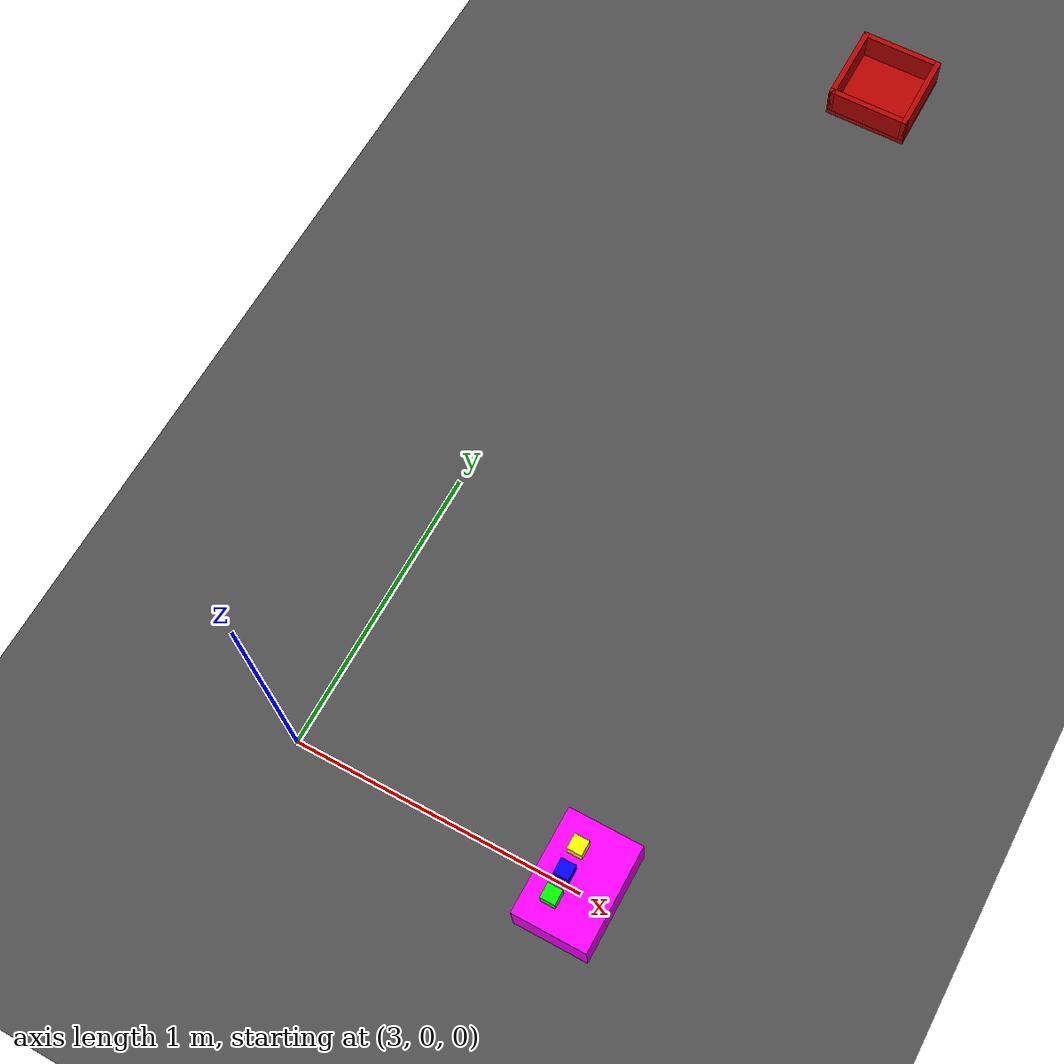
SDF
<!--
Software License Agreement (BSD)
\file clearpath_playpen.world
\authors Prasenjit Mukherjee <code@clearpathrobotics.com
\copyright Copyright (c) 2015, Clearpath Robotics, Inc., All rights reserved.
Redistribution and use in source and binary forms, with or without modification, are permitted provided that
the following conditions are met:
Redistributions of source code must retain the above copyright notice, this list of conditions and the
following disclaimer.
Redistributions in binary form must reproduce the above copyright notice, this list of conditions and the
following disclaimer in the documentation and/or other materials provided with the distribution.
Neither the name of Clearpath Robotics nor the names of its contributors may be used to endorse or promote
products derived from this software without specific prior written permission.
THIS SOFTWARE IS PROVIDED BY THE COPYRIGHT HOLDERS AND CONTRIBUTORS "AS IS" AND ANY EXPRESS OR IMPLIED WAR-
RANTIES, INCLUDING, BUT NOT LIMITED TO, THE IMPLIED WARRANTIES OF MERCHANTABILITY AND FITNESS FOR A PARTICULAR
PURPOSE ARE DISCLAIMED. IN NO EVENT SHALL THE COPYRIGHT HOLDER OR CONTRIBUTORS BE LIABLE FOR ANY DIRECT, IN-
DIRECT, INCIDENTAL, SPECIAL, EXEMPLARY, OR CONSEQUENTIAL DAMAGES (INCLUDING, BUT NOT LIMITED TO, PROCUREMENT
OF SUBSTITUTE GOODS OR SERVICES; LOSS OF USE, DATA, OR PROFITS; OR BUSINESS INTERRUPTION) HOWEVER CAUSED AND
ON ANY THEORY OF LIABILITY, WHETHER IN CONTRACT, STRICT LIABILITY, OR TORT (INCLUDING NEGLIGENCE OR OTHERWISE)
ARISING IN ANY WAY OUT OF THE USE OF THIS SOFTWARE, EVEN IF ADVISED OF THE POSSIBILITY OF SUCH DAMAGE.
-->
<sdf version="1.4">
 <world name="default">
  <light name="sun" type="directional">
   <pose>0 0 10 0 -0 0</pose>
   <diffuse>0.8 0.8 0.8 1</diffuse>
   <specular>0.2 0.2 0.2 1</specular>
   <attenuation>
    <range>1000</range>
    <constant>0.9</constant>
    <linear>0.01</linear>
    <quadratic>0.001</quadratic>
   </attenuation>
   <direction>-0.5 0.1 -0.9</direction>
  </light>
  <model name="ground_plane">
   <static>1</static>
   <link name="link">
    <collision name="collision">
     <geometry><plane><normal>0 0 1</normal><size>100 100</size></plane></geometry>
     <surface><friction><ode><mu>100</mu><mu2>50</mu2></ode></friction></surface>
    </collision>
    <visual name="visual">
     <cast_shadows>0</cast_shadows>
     <geometry><plane><normal>0 0 1</normal><size>100 100</size></plane></geometry>
     <material>
      <script><uri>file://media/materials/scripts/gazebo.material</uri><name>Gazebo/Grey</name></script>
     </material>
    </visual>
    <velocity_decay><linear>0</linear><angular>0</angular></velocity_decay>
   </link>
  </model>
  <physics type="ode">
   <max_step_size>0.01</max_step_size>
   <real_time_factor>1</real_time_factor>
   <real_time_update_rate>100</real_time_update_rate>
   <gravity>0 0 -9.8</gravity>
  </physics>
  <scene><ambient>0.4 0.4 0.4 1</ambient><background>0.7 0.7 0.7 1</background><shadows>1</shadows></scene>
  <model name="asphalt_plane">
   <static>1</static>
   <link name="link">
    <collision name="collision"><geometry><box><size>20 20 0.1</size></box></geometry></collision>
    <visual name="visual">
     <cast_shadows>0</cast_shadows>
     <geometry><box><size>20 20 0.1</size></box></geometry>
     <material>
      <script>
       <uri>model://asphalt_plane/materials/scripts</uri>
       <uri>model://asphalt_plane/materials/textures</uri>
       <name>vrc/asphalt</name>
      </script>
     </material>
    </visual>
    <velocity_decay><linear>0</linear><angular>0</angular></velocity_decay>
   </link>
   <pose>0.076733 -0.110379 0 0 -0 0</pose>
  </model>
  <model name="pick_table">
   <static>true</static>
   <pose>4.0 0 0.10 0 0 0</pose>
   <link name="table_link">
    <collision name="table_collision"><geometry><box><size>0.25 0.35 0.20</size></box></geometry></collision>
    <visual name="table_visual">
     <geometry><box><size>0.25 0.35 0.20</size></box></geometry>
     <material><ambient>0.8 0.0 0.8 1</ambient><diffuse>1.0 0.0 1.0 1</diffuse></material>
    </visual>
   </link>
  </model>
  <model name="red_cube">
   <pose>3.96 0.08 0.225 0 0 0</pose>
   <link name="red_cube_link">
    <inertial>
     <mass>0.05</mass>
     <inertia><ixx>0.00001</ixx><ixy>0</ixy><ixz>0</ixz><iyy>0.00001</iyy><iyz>0</iyz><izz>0.00001</izz></inertia>
    </inertial>
    <collision name="collision">
     <geometry><box><size>0.05 0.05 0.05</size></box></geometry>
     <surface>
      <friction><ode><mu>100.0</mu><mu2>100.0</mu2></ode></friction>
      <contact><ode><kp>1e6</kp><kd>1.0</kd><max_vel>0.01</max_vel><min_depth>0.001</min_depth></ode></contact>
     </surface>
    </collision>
    <visual name="visual">
     <geometry><box><size>0.05 0.05 0.05</size></box></geometry>
     <material><ambient>0.9 0.9 0.0 1</ambient><diffuse>1 1 0 1</diffuse></material>
    </visual>
   </link>
  </model>
  <model name="blue_cube">
   <pose>3.96 0 0.225 0 0 0</pose>
   <link name="blue_cube_link">
    <inertial>
     <mass>0.05</mass>
     <inertia><ixx>0.00001</ixx><ixy>0</ixy><ixz>0</ixz><iyy>0.00001</iyy><iyz>0</iyz><izz>0.00001</izz></inertia>
    </inertial>
    <collision name="collision">
     <geometry><box><size>0.05 0.05 0.05</size></box></geometry>
     <surface>
      <friction><ode><mu>100.0</mu><mu2>100.0</mu2></ode></friction>
      <contact><ode><kp>1e6</kp><kd>1.0</kd><max_vel>0.01</max_vel><min_depth>0.001</min_depth></ode></contact>
     </surface>
    </collision>
    <visual name="visual">
     <geometry><box><size>0.05 0.05 0.05</size></box></geometry>
     <material><ambient>0.1 0.1 0.9 1</ambient><diffuse>0 0 1 1</diffuse></material>
    </visual>
   </link>
  </model>
  <model name="green_cube">
   <pose>3.96 -0.08 0.225 0 0 0</pose>
   <link name="green_cube_link">
    <inertial>
     <mass>0.05</mass>
     <inertia><ixx>0.00001</ixx><ixy>0</ixy><ixz>0</ixz><iyy>0.00001</iyy><iyz>0</iyz><izz>0.00001</izz></inertia>
    </inertial>
    <collision name="collision">
     <geometry><box><size>0.05 0.05 0.05</size></box></geometry>
     <surface>
      <friction><ode><mu>100.0</mu><mu2>100.0</mu2></ode></friction>
      <contact><ode><kp>1e6</kp><kd>1.0</kd><max_vel>0.01</max_vel><min_depth>0.001</min_depth></ode></contact>
     </surface>
    </collision>
    <visual name="visual">
     <geometry><box><size>0.05 0.05 0.05</size></box></geometry>
     <material><ambient>0.1 0.9 0.1 1</ambient><diffuse>0 1 0 1</diffuse></material>
    </visual>
   </link>
  </model>
  <model name="yellow_basket">
   <static>true</static>
   <pose>3.6 3.0 0.10 0 0 1.5708</pose>
   <link name="basket_link">
    <collision name="bottom_collision"><geometry><box><size>0.30 0.30 0.02</size></box></geometry></collision>
    <visual name="bottom_visual">
     <geometry><box><size>0.30 0.30 0.02</size></box></geometry>
     <material><ambient>0.6 0.0 0.0 1</ambient><diffuse>0.7 0.0 0.0 1</diffuse></material>
    </visual>
    <collision name="front_collision">
     <pose>0.14 0 0.06 0 0 0</pose>
     <geometry><box><size>0.02 0.30 0.10</size></box></geometry>
    </collision>
    <visual name="front_visual">
     <pose>0.14 0 0.06 0 0 0</pose>
     <geometry><box><size>0.02 0.30 0.10</size></box></geometry>
     <material><ambient>0.6 0.0 0.0 1</ambient><diffuse>0.7 0.0 0.0 1</diffuse></material>
    </visual>
    <collision name="back_collision">
     <pose>-0.14 0 0.06 0 0 0</pose>
     <geometry><box><size>0.02 0.30 0.10</size></box></geometry>
    </collision>
    <visual name="back_visual">
     <pose>-0.14 0 0.06 0 0 0</pose>
     <geometry><box><size>0.02 0.30 0.10</size></box></geometry>
     <material><ambient>0.6 0.0 0.0 1</ambient><diffuse>0.7 0.0 0.0 1</diffuse></material>
    </visual>
    <collision name="left_collision">
     <pose>0 0.14 0.06 0 0 0</pose>
     <geometry><box><size>0.30 0.02 0.10</size></box></geometry>
    </collision>
    <visual name="left_visual">
     <pose>0 0.14 0.06 0 0 0</pose>
     <geometry><box><size>0.30 0.02 0.10</size></box></geometry>
     <material><ambient>0.6 0.0 0.0 1</ambient><diffuse>0.7 0.0 0.0 1</diffuse></material>
    </visual>
    <collision name="right_collision">
     <pose>0 -0.14 0.06 0 0 0</pose>
     <geometry><box><size>0.30 0.02 0.10</size></box></geometry>
    </collision>
    <visual name="right_visual">
     <pose>0 -0.14 0.06 0 0 0</pose>
     <geometry><box><size>0.30 0.02 0.10</size></box></geometry>
     <material><ambient>0.6 0.0 0.0 1</ambient><diffuse>0.7 0.0 0.0 1</diffuse></material>
    </visual>
   </link>
  </model>
 </world>
</sdf>
